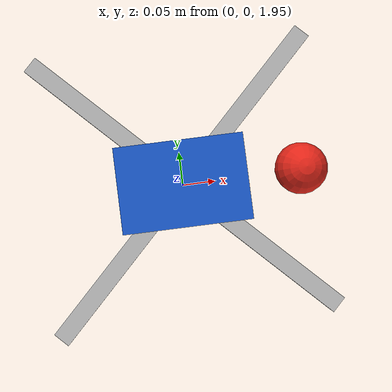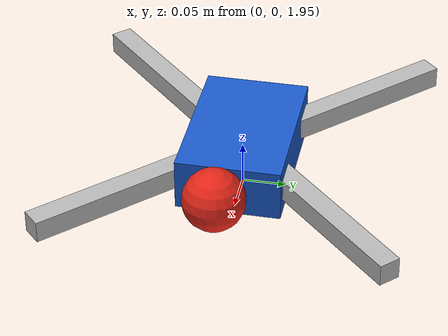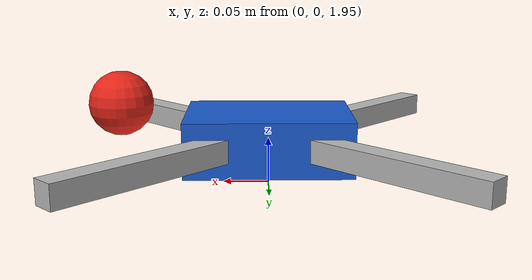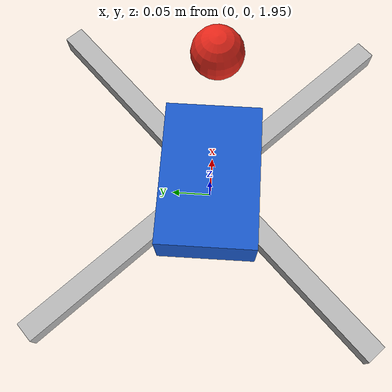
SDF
<?xml version="1.0"?>
<sdf version="1.9">
  <world name="quad_comparison">
    <plugin filename="gz-sim-physics-system" name="gz::sim::systems::Physics"/>
    <plugin filename="gz-sim-user-commands-system" name="gz::sim::systems::UserCommands"/>
    <plugin filename="gz-sim-scene-broadcaster-system" name="gz::sim::systems::SceneBroadcaster"/>
    <light type="directional" name="sun"><direction>-0.5 0.3 -1</direction></light>
    <model name="ground">
      <static>true</static>
      <link name="link">
        <collision name="collision">
          <geometry><plane><normal>0 0 1</normal><size>20 20</size></plane></geometry>
        </collision>
        <visual name="visual">
          <geometry><plane><normal>0 0 1</normal><size>20 20</size></plane></geometry>
        </visual>
      </link>
    </model>
    <include><uri>model://quadrotor_visual</uri><name>pid_quad</name><pose>0 0 2 0 0 0</pose></include>
    <include><uri>model://quadrotor_visual</uri><name>ppo_quad</name><pose>0 0 2 0 0 0</pose></include>
  </world>
</sdf>

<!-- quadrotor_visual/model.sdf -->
<sdf version="1.9">
  <model name="quadrotor_visual">
    <static>true</static>
    <link name="body">
      <visual name="core">
        <geometry><box><size>0.18 0.12 0.06</size></box></geometry>
        <material><ambient>0.1 0.35 0.8 1</ambient><diffuse>0.1 0.35 0.8 1</diffuse></material>
      </visual>
      <visual name="arm_a">
        <pose>0 0 0 0 0 0.7854</pose>
        <geometry><box><size>0.55 0.025 0.025</size></box></geometry>
      </visual>
      <visual name="arm_b">
        <pose>0 0 0 0 0 -0.7854</pose>
        <geometry><box><size>0.55 0.025 0.025</size></box></geometry>
      </visual>
      <visual name="front">
        <pose>0.16 0 0.04 0 0 0</pose>
        <geometry><sphere><radius>0.035</radius></sphere></geometry>
        <material><ambient>0.9 0.15 0.1 1</ambient><diffuse>0.9 0.15 0.1 1</diffuse></material>
      </visual>
    </link>
  </model>
</sdf>
